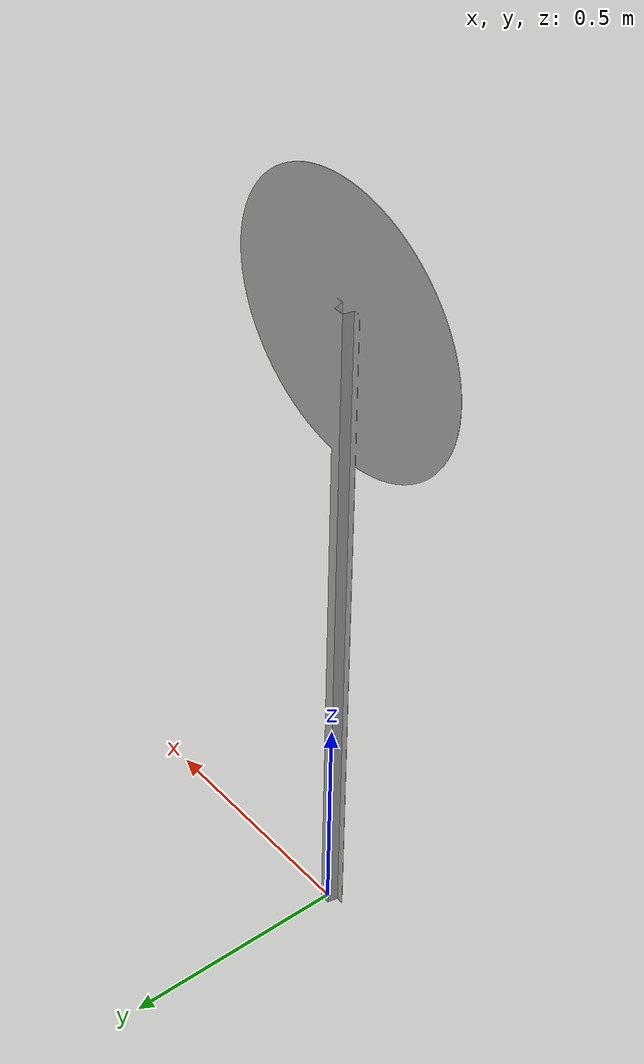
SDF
<?xml version="1.0" ?>
<sdf version="1.5">
  <model name="train_sign">
    <static>true</static>
    <link name="link">
      <collision name="collision">
        <geometry>
          <mesh>
            <uri>model://train_sign/meshes/train_sign.dae</uri>
          </mesh>
        </geometry>
      </collision>
      <visual name="visual">
        <geometry>
          <mesh>
            <uri>model://train_sign/meshes/train_sign.dae</uri>
          </mesh>
        </geometry>
        <material>
          <script>
            <uri>model://train_sign/materials/scripts</uri>
            <uri>model://train_sign/materials/textures</uri>
            <name>TrainSign/Diffuse</name>
          </script>
        </material>
      </visual>
    </link>
  </model>
</sdf>
